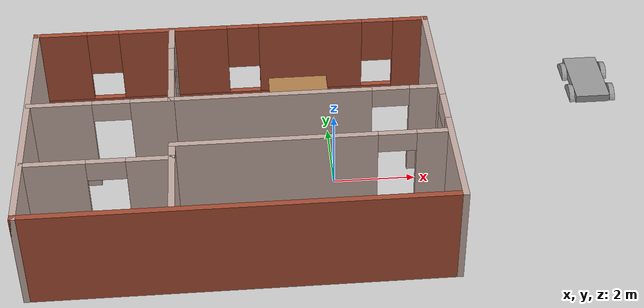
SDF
<sdf version="1.7">
 <world name="default">
  <model name="ground_plane">
   <static>1</static>
   <link name="link">
    <collision name="collision">
     <geometry><plane><normal>0 0 1</normal><size>100 100</size></plane></geometry>
     <surface>
      <contact><collide_bitmask>65535</collide_bitmask></contact>
      <friction><ode><mu>100</mu><mu2>50</mu2></ode></friction>
     </surface>
    </collision>
    <visual name="visual">
     <cast_shadows>0</cast_shadows>
     <geometry><plane><normal>0 0 1</normal><size>100 100</size></plane></geometry>
     <material>
      <script><uri>file://media/materials/scripts/gazebo.material</uri><name>Gazebo/Grey</name></script>
     </material>
    </visual>
   </link>
  </model>
  <model name="House">
   <pose>-2.31716 -0.09289 0 0 -0 0</pose>
   <link name="Wall_11">
    <collision name="Wall_11_Collision">
     <geometry><box><size>2.25 0.15 2.5</size></box></geometry>
     <pose>0 0 1.25 0 -0 0</pose>
    </collision>
    <visual name="Wall_11_Visual">
     <pose>0 0 1.25 0 -0 0</pose>
     <geometry><box><size>2.25 0.15 2.5</size></box></geometry>
     <material>
      <script><uri>file://media/materials/scripts/gazebo.material</uri><name>Gazebo/Grey</name></script>
      <ambient>0.760784 0.662745 0.627451 1</ambient>
     </material>
     <meta><layer>0</layer></meta>
    </visual>
    <pose>-1.51277 -2.24857 0 0 -0 -1.5708</pose>
   </link>
   <link name="Wall_13">
    <pose>1.66223 -1.19857 0 0 -0 0</pose>
    <visual name="Wall_13_Visual_0">
     <pose>-0.842733 0 1.25 0 -0 0</pose>
     <geometry><box><size>4.81453 0.15 2.5</size></box></geometry>
     <material>
      <script><uri>file://media/materials/scripts/gazebo.material</uri><name>Gazebo/Grey</name></script>
      <ambient>0.760784 0.662745 0.627451 1</ambient>
     </material>
     <meta><layer>0</layer></meta>
    </visual>
    <collision name="Wall_13_Collision_0">
     <geometry><box><size>4.81453 0.15 2.5</size></box></geometry>
     <pose>-0.842733 0 1.25 0 -0 0</pose>
    </collision>
    <visual name="Wall_13_Visual_1">
     <pose>2.85727 0 1.25 0 -0 0</pose>
     <geometry><box><size>0.785466 0.15 2.5</size></box></geometry>
     <material>
      <script><uri>file://media/materials/scripts/gazebo.material</uri><name>Gazebo/Grey</name></script>
      <ambient>0.760784 0.662745 0.627451 1</ambient>
     </material>
     <meta><layer>0</layer></meta>
    </visual>
    <collision name="Wall_13_Collision_1">
     <geometry><box><size>0.785466 0.15 2.5</size></box></geometry>
     <pose>2.85727 0 1.25 0 -0 0</pose>
    </collision>
    <visual name="Wall_13_Visual_2">
     <pose>2.01453 0 2.25 0 -0 0</pose>
     <geometry><box><size>0.9 0.15 0.5</size></box></geometry>
     <material>
      <script><uri>file://media/materials/scripts/gazebo.material</uri><name>Gazebo/Grey</name></script>
      <ambient>0.760784 0.662745 0.627451 1</ambient>
     </material>
     <meta><layer>0</layer></meta>
    </visual>
    <collision name="Wall_13_Collision_2">
     <geometry><box><size>0.9 0.15 0.5</size></box></geometry>
     <pose>2.01453 0 2.25 0 -0 0</pose>
    </collision>
   </link>
   <link name="Wall_2">
    <pose>0 3.425 0 0 -0 3.14159</pose>
    <visual name="Wall_2_Visual_0">
     <pose>-4.55322 0 1.25 0 -0 0</pose>
     <geometry><box><size>0.893563 0.15 2.5</size></box></geometry>
     <material>
      <script><uri>file://media/materials/scripts/gazebo.material</uri><name>Gazebo/Bricks</name></script>
      <ambient>1 1 1 1</ambient>
     </material>
     <meta><layer>0</layer></meta>
    </visual>
    <collision name="Wall_2_Collision_0">
     <geometry><box><size>0.893563 0.15 2.5</size></box></geometry>
     <pose>-4.55322 0 1.25 0 -0 0</pose>
    </collision>
    <visual name="Wall_2_Visual_1">
     <pose>0.446781 0 0.25 0 -0 0</pose>
     <geometry><box><size>9.10644 0.15 0.5</size></box></geometry>
     <material>
      <script><uri>file://media/materials/scripts/gazebo.material</uri><name>Gazebo/Bricks</name></script>
      <ambient>1 1 1 1</ambient>
     </material>
     <meta><layer>0</layer></meta>
    </visual>
    <collision name="Wall_2_Collision_1">
     <geometry><box><size>9.10644 0.15 0.5</size></box></geometry>
     <pose>0.446781 0 0.25 0 -0 0</pose>
    </collision>
    <visual name="Wall_2_Visual_2">
     <pose>-1.98544 0 1.5 0 -0 0</pose>
     <geometry><box><size>2.64199 0.15 2</size></box></geometry>
     <material>
      <script><uri>file://media/materials/scripts/gazebo.material</uri><name>Gazebo/Bricks</name></script>
      <ambient>1 1 1 1</ambient>
     </material>
     <meta><layer>0</layer></meta>
    </visual>
    <collision name="Wall_2_Collision_2">
     <geometry><box><size>2.64199 0.15 2</size></box></geometry>
     <pose>-1.98544 0 1.5 0 -0 0</pose>
    </collision>
    <visual name="Wall_2_Visual_3">
     <pose>1.50114 0 1.5 0 -0 0</pose>
     <geometry><box><size>2.73116 0.15 2</size></box></geometry>
     <material>
      <script><uri>file://media/materials/scripts/gazebo.material</uri><name>Gazebo/Bricks</name></script>
      <ambient>1 1 1 1</ambient>
     </material>
     <meta><layer>0</layer></meta>
    </visual>
    <collision name="Wall_2_Collision_3">
     <geometry><box><size>2.73116 0.15 2</size></box></geometry>
     <pose>1.50114 0 1.5 0 -0 0</pose>
    </collision>
    <visual name="Wall_2_Visual_4">
     <pose>4.33336 0 1.5 0 -0 0</pose>
     <geometry><box><size>1.33328 0.15 2</size></box></geometry>
     <material>
      <script><uri>file://media/materials/scripts/gazebo.material</uri><name>Gazebo/Bricks</name></script>
      <ambient>1 1 1 1</ambient>
     </material>
     <meta><layer>0</layer></meta>
    </visual>
    <collision name="Wall_2_Collision_4">
     <geometry><box><size>1.33328 0.15 2</size></box></geometry>
     <pose>4.33336 0 1.5 0 -0 0</pose>
    </collision>
    <visual name="Wall_2_Visual_5">
     <pose>-3.70644 0 1.9 0 -0 0</pose>
     <geometry><box><size>0.8 0.15 1.2</size></box></geometry>
     <material>
      <script><uri>file://media/materials/scripts/gazebo.material</uri><name>Gazebo/Bricks</name></script>
      <ambient>1 1 1 1</ambient>
     </material>
     <meta><layer>0</layer></meta>
    </visual>
    <collision name="Wall_2_Collision_5">
     <geometry><box><size>0.8 0.15 1.2</size></box></geometry>
     <pose>-3.70644 0 1.9 0 -0 0</pose>
    </collision>
    <visual name="Wall_2_Visual_6">
     <pose>-0.264443 0 1.9 0 -0 0</pose>
     <geometry><box><size>0.8 0.15 1.2</size></box></geometry>
     <material>
      <script><uri>file://media/materials/scripts/gazebo.material</uri><name>Gazebo/Bricks</name></script>
      <ambient>1 1 1 1</ambient>
     </material>
     <meta><layer>0</layer></meta>
    </visual>
    <collision name="Wall_2_Collision_6">
     <geometry><box><size>0.8 0.15 1.2</size></box></geometry>
     <pose>-0.264443 0 1.9 0 -0 0</pose>
    </collision>
    <visual name="Wall_2_Visual_7">
     <pose>3.26672 0 1.9 0 -0 0</pose>
     <geometry><box><size>0.8 0.15 1.2</size></box></geometry>
     <material>
      <script><uri>file://media/materials/scripts/gazebo.material</uri><name>Gazebo/Bricks</name></script>
      <ambient>1 1 1 1</ambient>
     </material>
     <meta><layer>0</layer></meta>
    </visual>
    <collision name="Wall_2_Collision_7">
     <geometry><box><size>0.8 0.15 1.2</size></box></geometry>
     <pose>3.26672 0 1.9 0 -0 0</pose>
    </collision>
   </link>
   <link name="Wall_24">
    <pose>-3.21181 0.51698 0 0 -0 3.14159</pose>
    <visual name="Wall_24_Visual_0">
     <pose>-1.22693 0 1.25 0 -0 0</pose>
     <geometry><box><size>1.04614 0.15 2.5</size></box></geometry>
     <material>
      <script><uri>file://media/materials/scripts/gazebo.material</uri><name>Gazebo/Grey</name></script>
      <ambient>0.760784 0.662745 0.627451 1</ambient>
     </material>
     <meta><layer>0</layer></meta>
    </visual>
    <collision name="Wall_24_Collision_0">
     <geometry><box><size>1.04614 0.15 2.5</size></box></geometry>
     <pose>-1.22693 0 1.25 0 -0 0</pose>
    </collision>
    <visual name="Wall_24_Visual_1">
     <pose>0.973072 0 1.25 0 -0 0</pose>
     <geometry><box><size>1.55386 0.15 2.5</size></box></geometry>
     <material>
      <script><uri>file://media/materials/scripts/gazebo.material</uri><name>Gazebo/Grey</name></script>
      <ambient>0.760784 0.662745 0.627451 1</ambient>
     </material>
     <meta><layer>0</layer></meta>
    </visual>
    <collision name="Wall_24_Collision_1">
     <geometry><box><size>1.55386 0.15 2.5</size></box></geometry>
     <pose>0.973072 0 1.25 0 -0 0</pose>
    </collision>
    <visual name="Wall_24_Visual_2">
     <pose>-0.253857 0 2.25 0 -0 0</pose>
     <geometry><box><size>0.9 0.15 0.5</size></box></geometry>
     <material>
      <script><uri>file://media/materials/scripts/gazebo.material</uri><name>Gazebo/Grey</name></script>
      <ambient>0.760784 0.662745 0.627451 1</ambient>
     </material>
     <meta><layer>0</layer></meta>
    </visual>
    <collision name="Wall_24_Collision_2">
     <geometry><box><size>0.9 0.15 0.5</size></box></geometry>
     <pose>-0.253857 0 2.25 0 -0 0</pose>
    </collision>
   </link>
   <link name="Wall_28">
    <pose>-3.19305 -1.66544 0 0 -0 3.14159</pose>
    <visual name="Wall_28_Visual_0">
     <pose>-1.19732 0 1.25 0 -0 0</pose>
     <geometry><box><size>1.10536 0.15 2.5</size></box></geometry>
     <material>
      <script><uri>file://media/materials/scripts/gazebo.material</uri><name>Gazebo/Grey</name></script>
      <ambient>0.760784 0.662745 0.627451 1</ambient>
     </material>
     <meta><layer>0</layer></meta>
    </visual>
    <collision name="Wall_28_Collision_0">
     <geometry><box><size>1.10536 0.15 2.5</size></box></geometry>
     <pose>-1.19732 0 1.25 0 -0 0</pose>
    </collision>
    <visual name="Wall_28_Visual_1">
     <pose>1.00268 0 1.25 0 -0 0</pose>
     <geometry><box><size>1.49464 0.15 2.5</size></box></geometry>
     <material>
      <script><uri>file://media/materials/scripts/gazebo.material</uri><name>Gazebo/Grey</name></script>
      <ambient>0.760784 0.662745 0.627451 1</ambient>
     </material>
     <meta><layer>0</layer></meta>
    </visual>
    <collision name="Wall_28_Collision_1">
     <geometry><box><size>1.49464 0.15 2.5</size></box></geometry>
     <pose>1.00268 0 1.25 0 -0 0</pose>
    </collision>
    <visual name="Wall_28_Visual_2">
     <pose>-0.194643 0 2.25 0 -0 0</pose>
     <geometry><box><size>0.9 0.15 0.5</size></box></geometry>
     <material>
      <script><uri>file://media/materials/scripts/gazebo.material</uri><name>Gazebo/Grey</name></script>
      <ambient>0.760784 0.662745 0.627451 1</ambient>
     </material>
     <meta><layer>0</layer></meta>
    </visual>
    <collision name="Wall_28_Collision_2">
     <geometry><box><size>0.9 0.15 0.5</size></box></geometry>
     <pose>-0.194643 0 2.25 0 -0 0</pose>
    </collision>
   </link>
   <link name="Wall_4">
    <collision name="Wall_4_Collision">
     <geometry><box><size>7 0.15 2.5</size></box></geometry>
     <pose>0 0 1.25 0 -0 0</pose>
    </collision>
    <visual name="Wall_4_Visual">
     <pose>0 0 1.25 0 -0 0</pose>
     <geometry><box><size>7 0.15 2.5</size></box></geometry>
     <material>
      <script><uri>file://media/materials/scripts/gazebo.material</uri><name>Gazebo/Grey</name></script>
      <ambient>0.760784 0.662745 0.627451 1</ambient>
     </material>
     <meta><layer>0</layer></meta>
    </visual>
    <pose>-4.925 -0 0 0 -0 -1.5708</pose>
   </link>
   <link name="Wall_5">
    <collision name="Wall_5_Collision">
     <geometry><box><size>10 0.15 2.5</size></box></geometry>
     <pose>0 0 1.25 0 -0 0</pose>
    </collision>
    <visual name="Wall_5_Visual">
     <pose>0 0 1.25 0 -0 0</pose>
     <geometry><box><size>10 0.15 2.5</size></box></geometry>
     <material>
      <script><uri>file://media/materials/scripts/gazebo.material</uri><name>Gazebo/Bricks</name></script>
      <ambient>0.760784 0.662745 0.627451 1</ambient>
     </material>
     <meta><layer>0</layer></meta>
    </visual>
    <pose>0 -3.425 0 0 -0 0</pose>
   </link>
   <link name="Wall_6">
    <pose>4.925 -0 0 0 -0 1.5708</pose>
    <visual name="Wall_6_Visual_0">
     <pose>-2.11545 0 1.25 0 -0 0</pose>
     <geometry><box><size>2.7691 0.15 2.5</size></box></geometry>
     <material>
      <script><uri>file://media/materials/scripts/gazebo.material</uri><name>Gazebo/Grey</name></script>
      <ambient>0.760784 0.662745 0.627451 1</ambient>
     </material>
     <meta><layer>0</layer></meta>
    </visual>
    <collision name="Wall_6_Collision_0">
     <geometry><box><size>2.7691 0.15 2.5</size></box></geometry>
     <pose>-2.11545 0 1.25 0 -0 0</pose>
    </collision>
    <visual name="Wall_6_Visual_1">
     <pose>1.83455 0 1.25 0 -0 0</pose>
     <geometry><box><size>3.3309 0.15 2.5</size></box></geometry>
     <material>
      <script><uri>file://media/materials/scripts/gazebo.material</uri><name>Gazebo/Grey</name></script>
      <ambient>0.760784 0.662745 0.627451 1</ambient>
     </material>
     <meta><layer>0</layer></meta>
    </visual>
    <collision name="Wall_6_Collision_1">
     <geometry><box><size>3.3309 0.15 2.5</size></box></geometry>
     <pose>1.83455 0 1.25 0 -0 0</pose>
    </collision>
    <visual name="Wall_6_Visual_2">
     <pose>-0.280903 0 2.25 0 -0 0</pose>
     <geometry><box><size>0.9 0.15 0.5</size></box></geometry>
     <material>
      <script><uri>file://media/materials/scripts/gazebo.material</uri><name>Gazebo/Grey</name></script>
      <ambient>0.760784 0.662745 0.627451 1</ambient>
     </material>
     <meta><layer>0</layer></meta>
    </visual>
    <collision name="Wall_6_Collision_2">
     <geometry><box><size>0.9 0.15 0.5</size></box></geometry>
     <pose>-0.280903 0 2.25 0 -0 0</pose>
    </collision>
   </link>
   <link name="Wall_8">
    <pose>-1.53681 1.94198 0 0 -0 -1.5708</pose>
    <visual name="Wall_8_Visual_0">
     <pose>-1.08397 0 1.25 0 -0 0</pose>
     <geometry><box><size>0.832063 0.15 2.5</size></box></geometry>
     <material>
      <script><uri>file://media/materials/scripts/gazebo.material</uri><name>Gazebo/Grey</name></script>
      <ambient>0.760784 0.662745 0.627451 1</ambient>
     </material>
     <meta><layer>0</layer></meta>
    </visual>
    <collision name="Wall_8_Collision_0">
     <geometry><box><size>0.832063 0.15 2.5</size></box></geometry>
     <pose>-1.08397 0 1.25 0 -0 0</pose>
    </collision>
    <visual name="Wall_8_Visual_1">
     <pose>0.866031 0 1.25 0 -0 0</pose>
     <geometry><box><size>1.26794 0.15 2.5</size></box></geometry>
     <material>
      <script><uri>file://media/materials/scripts/gazebo.material</uri><name>Gazebo/Grey</name></script>
      <ambient>0.760784 0.662745 0.627451 1</ambient>
     </material>
     <meta><layer>0</layer></meta>
    </visual>
    <collision name="Wall_8_Collision_1">
     <geometry><box><size>1.26794 0.15 2.5</size></box></geometry>
     <pose>0.866031 0 1.25 0 -0 0</pose>
    </collision>
    <visual name="Wall_8_Visual_2">
     <pose>-0.217937 0 2.25 0 -0 0</pose>
     <geometry><box><size>0.9 0.15 0.5</size></box></geometry>
     <material>
      <script><uri>file://media/materials/scripts/gazebo.material</uri><name>Gazebo/Grey</name></script>
      <ambient>0.760784 0.662745 0.627451 1</ambient>
     </material>
     <meta><layer>0</layer></meta>
    </visual>
    <collision name="Wall_8_Collision_2">
     <geometry><box><size>0.9 0.15 0.5</size></box></geometry>
     <pose>-0.217937 0 2.25 0 -0 0</pose>
    </collision>
   </link>
   <link name="Wall_9">
    <pose>1.63819 0.51698 0 0 -0 0</pose>
    <visual name="Wall_9_Visual_0">
     <pose>-0.810487 0 1.25 0 -0 0</pose>
     <geometry><box><size>4.87903 0.15 2.5</size></box></geometry>
     <material>
      <script><uri>file://media/materials/scripts/gazebo.material</uri><name>Gazebo/Grey</name></script>
      <ambient>0.760784 0.662745 0.627451 1</ambient>
     </material>
     <meta><layer>0</layer></meta>
    </visual>
    <collision name="Wall_9_Collision_0">
     <geometry><box><size>4.87903 0.15 2.5</size></box></geometry>
     <pose>-0.810487 0 1.25 0 -0 0</pose>
    </collision>
    <visual name="Wall_9_Visual_1">
     <pose>2.88951 0 1.25 0 -0 0</pose>
     <geometry><box><size>0.720973 0.15 2.5</size></box></geometry>
     <material>
      <script><uri>file://media/materials/scripts/gazebo.material</uri><name>Gazebo/Grey</name></script>
      <ambient>0.760784 0.662745 0.627451 1</ambient>
     </material>
     <meta><layer>0</layer></meta>
    </visual>
    <collision name="Wall_9_Collision_1">
     <geometry><box><size>0.720973 0.15 2.5</size></box></geometry>
     <pose>2.88951 0 1.25 0 -0 0</pose>
    </collision>
    <visual name="Wall_9_Visual_2">
     <pose>2.07903 0 2.25 0 -0 0</pose>
     <geometry><box><size>0.9 0.15 0.5</size></box></geometry>
     <material>
      <script><uri>file://media/materials/scripts/gazebo.material</uri><name>Gazebo/Grey</name></script>
      <ambient>0.760784 0.662745 0.627451 1</ambient>
     </material>
     <meta><layer>0</layer></meta>
    </visual>
    <collision name="Wall_9_Collision_2">
     <geometry><box><size>0.9 0.15 0.5</size></box></geometry>
     <pose>2.07903 0 2.25 0 -0 0</pose>
    </collision>
   </link>
   <static>1</static>
  </model>
  <model name="table">
   <static>1</static>
   <link name="link">
    <collision name="surface">
     <pose>0 0 1 0 -0 0</pose>
     <geometry><box><size>1.5 0.8 0.03</size></box></geometry>
     <surface><friction><ode><mu>0.6</mu><mu2>0.6</mu2></ode></friction></surface>
    </collision>
    <visual name="visual1">
     <pose>0 0 1 0 -0 0</pose>
     <geometry><box><size>1.5 0.8 0.03</size></box></geometry>
     <material>
      <script><uri>file://media/materials/scripts/gazebo.material</uri><name>Gazebo/Wood</name></script>
     </material>
    </visual>
    <collision name="front_left_leg">
     <pose>0.68 0.38 0.5 0 -0 0</pose>
     <geometry><cylinder><radius>0.02</radius><length>1</length></cylinder></geometry>
    </collision>
    <visual name="front_left_leg">
     <pose>0.68 0.38 0.5 0 -0 0</pose>
     <geometry><cylinder><radius>0.02</radius><length>1</length></cylinder></geometry>
     <material>
      <script><uri>file://media/materials/scripts/gazebo.material</uri><name>Gazebo/Grey</name></script>
     </material>
    </visual>
    <collision name="front_right_leg">
     <pose>0.68 -0.38 0.5 0 -0 0</pose>
     <geometry><cylinder><radius>0.02</radius><length>1</length></cylinder></geometry>
    </collision>
    <visual name="front_right_leg">
     <pose>0.68 -0.38 0.5 0 -0 0</pose>
     <geometry><cylinder><radius>0.02</radius><length>1</length></cylinder></geometry>
     <material>
      <script><uri>file://media/materials/scripts/gazebo.material</uri><name>Gazebo/Grey</name></script>
     </material>
    </visual>
    <collision name="back_right_leg">
     <pose>-0.68 -0.38 0.5 0 -0 0</pose>
     <geometry><cylinder><radius>0.02</radius><length>1</length></cylinder></geometry>
    </collision>
    <visual name="back_right_leg">
     <pose>-0.68 -0.38 0.5 0 -0 0</pose>
     <geometry><cylinder><radius>0.02</radius><length>1</length></cylinder></geometry>
     <material>
      <script><uri>file://media/materials/scripts/gazebo.material</uri><name>Gazebo/Grey</name></script>
     </material>
    </visual>
    <collision name="back_left_leg">
     <pose>-0.68 0.38 0.5 0 -0 0</pose>
     <geometry><cylinder><radius>0.02</radius><length>1</length></cylinder></geometry>
    </collision>
    <visual name="back_left_leg">
     <pose>-0.68 0.38 0.5 0 -0 0</pose>
     <geometry><cylinder><radius>0.02</radius><length>1</length></cylinder></geometry>
     <material>
      <script><uri>file://media/materials/scripts/gazebo.material</uri><name>Gazebo/Grey</name></script>
     </material>
    </visual>
   </link>
   <pose>-0.700565 2.68079 0 0 -0 0</pose>
  </model>
  <model name="table_0">
   <static>1</static>
   <link name="link">
    <collision name="surface">
     <pose>0 0 1 0 -0 0</pose>
     <geometry><box><size>1.5 0.8 0.03</size></box></geometry>
     <surface><friction><ode><mu>0.6</mu><mu2>0.6</mu2></ode></friction></surface>
    </collision>
    <visual name="visual1">
     <pose>0 0 1 0 -0 0</pose>
     <geometry><box><size>1.5 0.8 0.03</size></box></geometry>
     <material>
      <script><uri>file://media/materials/scripts/gazebo.material</uri><name>Gazebo/Wood</name></script>
     </material>
    </visual>
    <collision name="front_left_leg">
     <pose>0.68 0.38 0.5 0 -0 0</pose>
     <geometry><cylinder><radius>0.02</radius><length>1</length></cylinder></geometry>
    </collision>
    <visual name="front_left_leg">
     <pose>0.68 0.38 0.5 0 -0 0</pose>
     <geometry><cylinder><radius>0.02</radius><length>1</length></cylinder></geometry>
     <material>
      <script><uri>file://media/materials/scripts/gazebo.material</uri><name>Gazebo/Grey</name></script>
     </material>
    </visual>
    <collision name="front_right_leg">
     <pose>0.68 -0.38 0.5 0 -0 0</pose>
     <geometry><cylinder><radius>0.02</radius><length>1</length></cylinder></geometry>
    </collision>
    <visual name="front_right_leg">
     <pose>0.68 -0.38 0.5 0 -0 0</pose>
     <geometry><cylinder><radius>0.02</radius><length>1</length></cylinder></geometry>
     <material>
      <script><uri>file://media/materials/scripts/gazebo.material</uri><name>Gazebo/Grey</name></script>
     </material>
    </visual>
    <collision name="back_right_leg">
     <pose>-0.68 -0.38 0.5 0 -0 0</pose>
     <geometry><cylinder><radius>0.02</radius><length>1</length></cylinder></geometry>
    </collision>
    <visual name="back_right_leg">
     <pose>-0.68 -0.38 0.5 0 -0 0</pose>
     <geometry><cylinder><radius>0.02</radius><length>1</length></cylinder></geometry>
     <material>
      <script><uri>file://media/materials/scripts/gazebo.material</uri><name>Gazebo/Grey</name></script>
     </material>
    </visual>
    <collision name="back_left_leg">
     <pose>-0.68 0.38 0.5 0 -0 0</pose>
     <geometry><cylinder><radius>0.02</radius><length>1</length></cylinder></geometry>
    </collision>
    <visual name="back_left_leg">
     <pose>-0.68 0.38 0.5 0 -0 0</pose>
     <geometry><cylinder><radius>0.02</radius><length>1</length></cylinder></geometry>
     <material>
      <script><uri>file://media/materials/scripts/gazebo.material</uri><name>Gazebo/Grey</name></script>
     </material>
    </visual>
   </link>
   <pose>-2.07889 -2.36619 0 0 -0 0</pose>
  </model>
  <model name="LittleCar">
   <link name="link_0">
    <inertial>
     <mass>0.308263</mass>
     <inertia>
      <ixx>0.078646</ixx>
      <ixy>0</ixy>
      <ixz>0</ixz>
      <iyy>0.0214698</iyy>
      <iyz>0</iyz>
      <izz>0.0980879</izz>
     </inertia>
    </inertial>
    <pose>-0.006909 -0.001014 0.179745 0 -0 0</pose>
    <visual name="visual">
     <geometry><box><size>0.892357 1.7384 0.198675</size></box></geometry>
     <material>
      <lighting>1</lighting>
      <script><uri>file://media/materials/scripts/gazebo.material</uri><name>Gazebo/Grey</name></script>
      <shader type="pixel"/>
      <emissive>0 0 0 1</emissive>
     </material>
    </visual>
    <collision name="collision">
     <geometry><box><size>0.892357 1.7384 0.198675</size></box></geometry>
     <surface>
      <friction>
       <ode><mu>1</mu><mu2>1</mu2><fdir1>0 0 0</fdir1><slip1>0</slip1><slip2>0</slip2></ode>
       <torsional>
        <coefficient>1</coefficient>
        <patch_radius>0</patch_radius>
        <surface_radius>0</surface_radius>
        <use_patch_radius>1</use_patch_radius>
        <ode><slip>0</slip></ode>
       </torsional>
      </friction>
      <bounce><restitution_coefficient>0</restitution_coefficient><threshold>1e+06</threshold></bounce>
      <contact>
       <collide_without_contact>0</collide_without_contact>
       <collide_without_contact_bitmask>1</collide_without_contact_bitmask>
       <collide_bitmask>1</collide_bitmask>
       <ode>
        <soft_cfm>0</soft_cfm>
        <soft_erp>0.2</soft_erp>
        <kp>1e+13</kp>
        <kd>1</kd>
        <max_vel>0.01</max_vel>
        <min_depth>0</min_depth>
       </ode>
       <bullet>
        <split_impulse>1</split_impulse>
        <split_impulse_penetration_threshold>-0.01</split_impulse_penetration_threshold>
        <soft_cfm>0</soft_cfm>
        <soft_erp>0.2</soft_erp>
        <kp>1e+13</kp>
        <kd>1</kd>
       </bullet>
      </contact>
     </surface>
    </collision>
   </link>
   <link name="link_1">
    <inertial>
     <mass>0.0696809</mass>
     <inertia>
      <ixx>0.00233516</ixx>
      <ixy>0</ixy>
      <ixz>0</ixz>
      <iyy>0.00233516</iyy>
      <iyz>0</iyz>
      <izz>0.00445478</izz>
     </inertia>
    </inertial>
    <pose>-0.533773 0.487667 -0.044937 3.14159 1.57079 3.14159</pose>
    <visual name="visual">
     <geometry><cylinder><radius>0.357578</radius><length>0.136234</length></cylinder></geometry>
     <material>
      <lighting>1</lighting>
      <script><uri>file://media/materials/scripts/gazebo.material</uri><name>Gazebo/Grey</name></script>
      <shader type="pixel"><normal_map>__default__</normal_map></shader>
      <ambient>0.3 0.3 0.3 1</ambient>
      <diffuse>0.7 0.7 0.7 1</diffuse>
      <specular>0.01 0.01 0.01 1</specular>
      <emissive>0 0 0 1</emissive>
     </material>
    </visual>
    <collision name="collision">
     <geometry><cylinder><radius>0.357578</radius><length>0.136234</length></cylinder></geometry>
     <surface>
      <friction>
       <ode><mu>1</mu><mu2>1</mu2><fdir1>0 0 0</fdir1><slip1>0</slip1><slip2>0</slip2></ode>
       <torsional>
        <coefficient>1</coefficient>
        <patch_radius>0</patch_radius>
        <surface_radius>0</surface_radius>
        <use_patch_radius>1</use_patch_radius>
        <ode><slip>0</slip></ode>
       </torsional>
      </friction>
      <bounce><restitution_coefficient>0</restitution_coefficient><threshold>1e+06</threshold></bounce>
      <contact>
       <collide_without_contact>0</collide_without_contact>
       <collide_without_contact_bitmask>1</collide_without_contact_bitmask>
       <collide_bitmask>1</collide_bitmask>
       <ode>
        <soft_cfm>0</soft_cfm>
        <soft_erp>0.2</soft_erp>
        <kp>1e+13</kp>
        <kd>1</kd>
        <max_vel>0.01</max_vel>
        <min_depth>0</min_depth>
       </ode>
       <bullet>
        <split_impulse>1</split_impulse>
        <split_impulse_penetration_threshold>-0.01</split_impulse_penetration_threshold>
        <soft_cfm>0</soft_cfm>
        <soft_erp>0.2</soft_erp>
        <kp>1e+13</kp>
        <kd>1</kd>
       </bullet>
      </contact>
     </surface>
    </collision>
   </link>
   <link name="link_1_clone">
    <inertial>
     <mass>0.0696809</mass>
     <inertia>
      <ixx>0.00233516</ixx>
      <ixy>0</ixy>
      <ixz>0</ixz>
      <iyy>0.00233516</iyy>
      <iyz>0</iyz>
      <izz>0.00445478</izz>
     </inertia>
    </inertial>
    <pose>-0.533058 -0.477451 -0.044936 3.14159 1.57079 3.14159</pose>
    <visual name="visual">
     <geometry><cylinder><radius>0.357578</radius><length>0.136234</length></cylinder></geometry>
     <material>
      <lighting>1</lighting>
      <script><uri>file://media/materials/scripts/gazebo.material</uri><name>Gazebo/Grey</name></script>
      <shader type="pixel"><normal_map>__default__</normal_map></shader>
      <ambient>0.3 0.3 0.3 1</ambient>
      <diffuse>0.7 0.7 0.7 1</diffuse>
      <specular>0.01 0.01 0.01 1</specular>
      <emissive>0 0 0 1</emissive>
     </material>
    </visual>
    <collision name="collision">
     <geometry><cylinder><radius>0.357578</radius><length>0.136234</length></cylinder></geometry>
     <surface>
      <friction>
       <ode><mu>1</mu><mu2>1</mu2><fdir1>0 0 0</fdir1><slip1>0</slip1><slip2>0</slip2></ode>
       <torsional>
        <coefficient>1</coefficient>
        <patch_radius>0</patch_radius>
        <surface_radius>0</surface_radius>
        <use_patch_radius>1</use_patch_radius>
        <ode><slip>0</slip></ode>
       </torsional>
      </friction>
      <bounce><restitution_coefficient>0</restitution_coefficient><threshold>1e+06</threshold></bounce>
      <contact>
       <collide_without_contact>0</collide_without_contact>
       <collide_without_contact_bitmask>1</collide_without_contact_bitmask>
       <collide_bitmask>1</collide_bitmask>
       <ode>
        <soft_cfm>0</soft_cfm>
        <soft_erp>0.2</soft_erp>
        <kp>1e+13</kp>
        <kd>1</kd>
        <max_vel>0.01</max_vel>
        <min_depth>0</min_depth>
       </ode>
       <bullet>
        <split_impulse>1</split_impulse>
        <split_impulse_penetration_threshold>-0.01</split_impulse_penetration_threshold>
        <soft_cfm>0</soft_cfm>
        <soft_erp>0.2</soft_erp>
        <kp>1e+13</kp>
        <kd>1</kd>
       </bullet>
      </contact>
     </surface>
    </collision>
   </link>
   <link name="link_1_clone_0">
    <inertial>
     <mass>0.0696809</mass>
     <inertia>
      <ixx>0.00233516</ixx>
      <ixy>0</ixy>
      <ixz>0</ixz>
      <iyy>0.00233516</iyy>
      <iyz>0</iyz>
      <izz>0.00445478</izz>
     </inertia>
    </inertial>
    <pose>0.534168 0.4807 -0.044937 3.14159 1.57079 3.14159</pose>
    <visual name="visual">
     <geometry><cylinder><radius>0.357578</radius><length>0.136234</length></cylinder></geometry>
     <material>
      <lighting>1</lighting>
      <script><uri>file://media/materials/scripts/gazebo.material</uri><name>Gazebo/Grey</name></script>
      <shader type="pixel"><normal_map>__default__</normal_map></shader>
      <ambient>0.3 0.3 0.3 1</ambient>
      <diffuse>0.7 0.7 0.7 1</diffuse>
      <specular>0.01 0.01 0.01 1</specular>
      <emissive>0 0 0 1</emissive>
     </material>
    </visual>
    <collision name="collision">
     <geometry><cylinder><radius>0.357578</radius><length>0.136234</length></cylinder></geometry>
     <surface>
      <friction>
       <ode><mu>1</mu><mu2>1</mu2><fdir1>0 0 0</fdir1><slip1>0</slip1><slip2>0</slip2></ode>
       <torsional>
        <coefficient>1</coefficient>
        <patch_radius>0</patch_radius>
        <surface_radius>0</surface_radius>
        <use_patch_radius>1</use_patch_radius>
        <ode><slip>0</slip></ode>
       </torsional>
      </friction>
      <bounce><restitution_coefficient>0</restitution_coefficient><threshold>1e+06</threshold></bounce>
      <contact>
       <collide_without_contact>0</collide_without_contact>
       <collide_without_contact_bitmask>1</collide_without_contact_bitmask>
       <collide_bitmask>1</collide_bitmask>
       <ode>
        <soft_cfm>0</soft_cfm>
        <soft_erp>0.2</soft_erp>
        <kp>1e+13</kp>
        <kd>1</kd>
        <max_vel>0.01</max_vel>
        <min_depth>0</min_depth>
       </ode>
       <bullet>
        <split_impulse>1</split_impulse>
        <split_impulse_penetration_threshold>-0.01</split_impulse_penetration_threshold>
        <soft_cfm>0</soft_cfm>
        <soft_erp>0.2</soft_erp>
        <kp>1e+13</kp>
        <kd>1</kd>
       </bullet>
      </contact>
     </surface>
    </collision>
   </link>
   <link name="link_1_clone_clone">
    <inertial>
     <mass>0.0696809</mass>
     <inertia>
      <ixx>0.00233516</ixx>
      <ixy>0</ixy>
      <ixz>0</ixz>
      <iyy>0.00233516</iyy>
      <iyz>0</iyz>
      <izz>0.00445478</izz>
     </inertia>
    </inertial>
    <pose>0.539576 -0.489904 -0.044936 3.14159 1.57079 3.14159</pose>
    <visual name="visual">
     <geometry><cylinder><radius>0.357578</radius><length>0.136234</length></cylinder></geometry>
     <material>
      <lighting>1</lighting>
      <script><uri>file://media/materials/scripts/gazebo.material</uri><name>Gazebo/Grey</name></script>
      <shader type="pixel"><normal_map>__default__</normal_map></shader>
      <ambient>0.3 0.3 0.3 1</ambient>
      <diffuse>0.7 0.7 0.7 1</diffuse>
      <specular>0.01 0.01 0.01 1</specular>
      <emissive>0 0 0 1</emissive>
     </material>
    </visual>
    <collision name="collision">
     <geometry><cylinder><radius>0.357578</radius><length>0.136234</length></cylinder></geometry>
     <surface>
      <friction>
       <ode><mu>1</mu><mu2>1</mu2><fdir1>0 0 0</fdir1><slip1>0</slip1><slip2>0</slip2></ode>
       <torsional>
        <coefficient>1</coefficient>
        <patch_radius>0</patch_radius>
        <surface_radius>0</surface_radius>
        <use_patch_radius>1</use_patch_radius>
        <ode><slip>0</slip></ode>
       </torsional>
      </friction>
      <bounce><restitution_coefficient>0</restitution_coefficient><threshold>1e+06</threshold></bounce>
      <contact>
       <collide_without_contact>0</collide_without_contact>
       <collide_without_contact_bitmask>1</collide_without_contact_bitmask>
       <collide_bitmask>1</collide_bitmask>
       <ode>
        <soft_cfm>0</soft_cfm>
        <soft_erp>0.2</soft_erp>
        <kp>1e+13</kp>
        <kd>1</kd>
        <max_vel>0.01</max_vel>
        <min_depth>0</min_depth>
       </ode>
       <bullet>
        <split_impulse>1</split_impulse>
        <split_impulse_penetration_threshold>-0.01</split_impulse_penetration_threshold>
        <soft_cfm>0</soft_cfm>
        <soft_erp>0.2</soft_erp>
        <kp>1e+13</kp>
        <kd>1</kd>
       </bullet>
      </contact>
     </surface>
    </collision>
   </link>
   <static>0</static>
   <pose>7.14846 3.55531 -0.080408 0 -0 0</pose>
  </model>
 </world>
</sdf>
